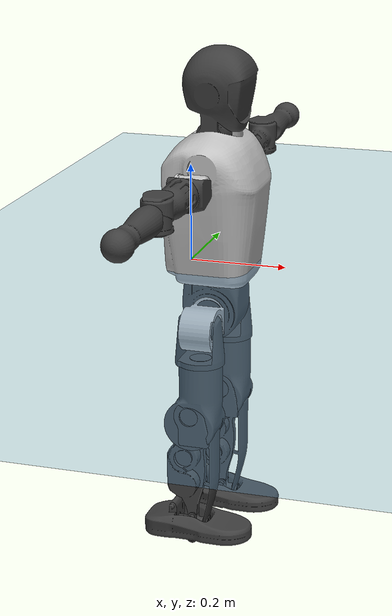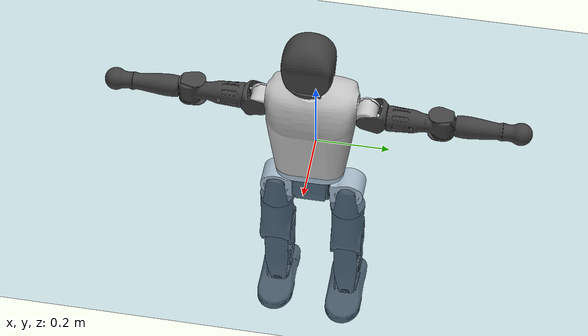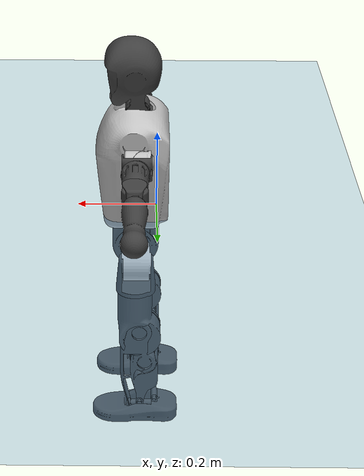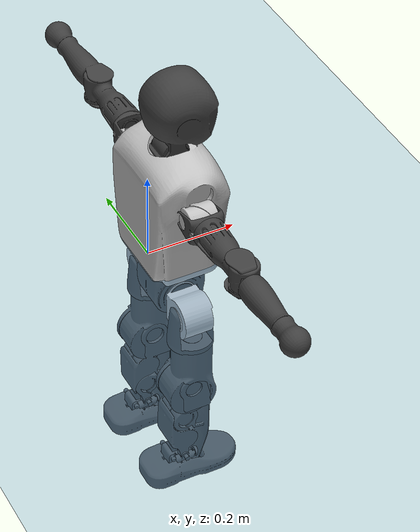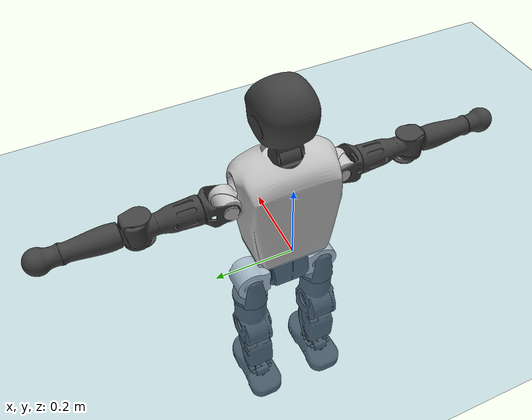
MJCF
<mujoco model="T1">
  <compiler angle="radian" assetdir="assets" balanceinertia="true" inertiafromgeom="false"/>

  <option timestep="0.005" density="1.2" viscosity="2e-05"/>

  <size nkey="1"/>

  <visual>
    <quality shadowsize="8192"/>
    <map shadowclip="0.5"/>
  </visual>

  <default>
    <default class="/">
      <joint armature="0.01" damping="0.01" frictionloss="0.1"/>
      <geom contype="0" conaffinity="0" group="1" solref="-1000 -80"/>
      <site size="0.01 0.005 0.005" group="5"/>
      <general forcelimited="true" biastype="affine" gainprm="25" biasprm="0 -25 -0.6"/>
      <default class="t1">
        <geom rgba="0.25 0.25 0.25 1"/>
        <default class="visual">
          <geom type="mesh" group="2"/>
        </default>
        <default class="collision">
          <geom group="3"/>
        </default>
        <default class="foot">
          <geom size="0.1115 0.05 0.015" type="box" condim="6" group="4" priority="1" solimp="0.015 1 0.015"/>
        </default>
        <default class="reward_collision_sphere">
          <geom group="5" rgba="1 0 0 1"/>
        </default>
      </default>
    </default>
  </default>

  <asset>
    <texture type="skybox" colorspace="auto" name="//unnamed_texture_0" builtin="gradient" rgb1="0.95 0.95 0.95" rgb2="0.95 0.95 0.95" width="100" height="600"/>
    <texture type="2d" colorspace="auto" name="texplane" builtin="checker" rgb1="0.345 0.575 0.748" rgb2="0.345 0.575 0.748" markrgb="1 1 1" width="512" height="512"/>
    <material name="MatPlane" class="/" texture="texplane" texuniform="true" texrepeat="2 2" specular="0.9"/>
    <mesh name="Trunk" class="/" file="Trunk.stl"/>
    <mesh name="H1" class="/" file="H1.stl"/>
    <mesh name="H2" class="/" file="H2.stl"/>
    <mesh name="AL1" class="/" file="AL1.stl"/>
    <mesh name="AL2" class="/" file="AL2.stl"/>
    <mesh name="AL3" class="/" file="AL3.stl"/>
    <mesh name="left_hand_link" class="/" file="left_hand_link.stl"/>
    <mesh name="AR1" class="/" file="AR1.stl"/>
    <mesh name="AR2" class="/" file="AR2.stl"/>
    <mesh name="AR3" class="/" file="AR3.stl"/>
    <mesh name="right_hand_link" class="/" file="right_hand_link.stl"/>
    <mesh name="Waist" class="/" file="Waist.stl"/>
    <mesh name="Hip_Pitch_Left" class="/" file="Hip_Pitch_Left.stl"/>
    <mesh name="Hip_Roll_Left" class="/" file="Hip_Roll_Left.stl"/>
    <mesh name="Hip_Yaw_Left" class="/" file="Hip_Yaw_Left.stl"/>
    <mesh name="Shank_Left" class="/" file="Shank_Left.stl"/>
    <mesh name="Ankle_Cross_Left" class="/" file="Ankle_Cross_Left.stl"/>
    <mesh name="left_foot_link" class="/" file="left_foot_link.stl"/>
    <mesh name="Hip_Pitch_Right" class="/" file="Hip_Pitch_Right.stl"/>
    <mesh name="Hip_Roll_Right" class="/" file="Hip_Roll_Right.stl"/>
    <mesh name="Hip_Yaw_Right" class="/" file="Hip_Yaw_Right.stl"/>
    <mesh name="Shank_Right" class="/" file="Shank_Right.stl"/>
    <mesh name="Ankle_Cross_Right" class="/" file="Ankle_Cross_Right.stl"/>
    <mesh name="right_foot_link" class="/" file="right_foot_link.stl"/>
  </asset>

  <worldbody>
    <geom name="floor" class="/" size="100 100 0.125" type="plane" group="0" material="MatPlane"/>
    <light name="toplight_shadow" class="/" pos="0 0 5" dir="0.0990148 0.0990148 -0.990148" type="directional" ambient="0.04 0.04 0.04" diffuse="0.55 0.55 0.55" specular="0.12 0.12 0.12"/>
    <light name="toplight_fill" class="/" pos="0 0 5" dir="0.0990148 0.0990148 -0.990148" type="directional" castshadow="false" ambient="0.04 0.04 0.04" diffuse="0.3 0.3 0.3" specular="0.08 0.08 0.08"/>
    <body name="trunk" childclass="t1" pos="0.000619805 -0.000138254 0.00279367" quat="1 0.000524918 4.48241e-05 9.55248e-05">
      <inertial pos="0.0453411 0.000867642 0.0877865" quat="0.99984 0.000947879 -0.0162679 -0.00737804" mass="7.20168" diaginertia="0.0362842 0.0462324 0.0222075"/>
      <joint name="//unnamed_joint_0" type="free" armature="0" damping="0" frictionloss="0"/>
      <geom name="//unnamed_geom_1" class="visual" rgba="0.76 0.76 0.76 1" mesh="Trunk"/>
      <geom name="//unnamed_geom_2" class="collision" size="0.0644516 0.0859354 0.128903" pos="0.0501755 0 0.100419" type="box"/>
      <geom name="//unnamed_geom_3" class="reward_collision_sphere" size="0.0988257" pos="0.0501755 0 0.0836824"/>
      <geom name="//unnamed_geom_4" class="reward_collision_sphere" size="0.0128903" pos="0.0501755 0.0769233 0"/>
      <geom name="//unnamed_geom_5" class="reward_collision_sphere" size="0.0128903" pos="0.0501755 -0.0769233 0"/>
      <geom name="//unnamed_geom_6" class="reward_collision_sphere" size="0.0128903" pos="0.0501755 0.0968329 0.150628"/>
      <geom name="//unnamed_geom_7" class="reward_collision_sphere" size="0.0128903" pos="0.0501755 -0.0968329 0.150628"/>
      <site name="imu" pos="0.00917713 -0.0127878 0.00767196" size="0.00859354"/>
      <camera name="track" pos="0 -1.80996 0" quat="0.707107 0.707107 0 0" mode="trackcom"/>
      <camera name="ego_camera" pos="0.102024 0 0.351466" quat="-0.5 -0.5 0.5 0.5"/>
      <body name="H1" pos="0.0495842 -0.00290985 0.20258" quat="0.999999 0.000431661 -0.000613645 0.000846037">
        <inertial pos="-0.00226105 -0.000967346 0.048613" quat="0.763599 -0.014605 7.91806e-05 0.645525" mass="0.279962" diaginertia="0.000102015 0.00013536 6.35219e-05"/>
        <joint name="AAHead_yaw" pos="0 0 0" axis="-0.00118013 1.90638e-07 0.999999" stiffness="0.0103598" range="-1.54278 1.61958" armature="0.00858886" damping="0.00951598" frictionloss="0.0850293"/>
        <geom name="//unnamed_geom_8" class="visual" mesh="H1"/>
        <body name="H2" pos="-0.000538679 -0.00244369 0.0524967" quat="1 -4.01109e-05 -1.07457e-05 9.90134e-06">
          <inertial pos="0.00779476 0.00318972 0.0850587" quat="0.988884 0.10264 -0.0722487 -0.0797127" mass="0.408058" diaginertia="0.000841129 0.0011531 0.000712646"/>
          <joint name="Head_pitch" pos="0 0 0" axis="0.000226717 -1 0.000293962" stiffness="0.00582492" range="-1.22959 0.402504" armature="0.00746158" damping="0" frictionloss="0.0850051"/>
          <geom name="//unnamed_geom_9" class="visual" mesh="H2"/>
          <geom name="//unnamed_geom_10" class="collision" size="0.0687483" pos="0.00836259 0 0.0920506"/>
          <geom name="//unnamed_geom_11" class="reward_collision_sphere" size="0.0773419" pos="0.0167252 0 0.0836824"/>
        </body>
      </body>
      <body name="AL1" pos="0.0475693 0.0966237 0.181414" quat="1 0.000356438 0.000810587 -0.000295968">
        <inertial pos="0.00111161 0.0425117 0.00225413" quat="0.511983 0.491276 -0.506675 0.489694" mass="0.339361" diaginertia="0.000567786 0.000790162 0.000123259"/>
        <joint name="Left_Shoulder_Pitch" pos="0 0 0" axis="0.000411768 1 0.000246628" range="-3.35875 1.16403" armature="0.00837084" damping="0.00031734" frictionloss="0.0862902"/>
        <geom name="//unnamed_geom_12" class="visual" rgba="0.76 0.76 0.76 1" mesh="AL1"/>
        <body name="AL2" pos="0.00193458 0.0457454 -0.000129643" quat="1 6.053e-05 -0.000992716 4.13288e-05">
          <inertial pos="0.0051753 0.0341187 -0.00292325" quat="0.485979 0.515633 -0.486595 0.51105" mass="0.106503" diaginertia="0.0001707 0.000223202 7.51487e-05"/>
          <joint name="Left_Shoulder_Roll" pos="0 0 0" axis="-0.999991 -0.00334959 0.00257042" range="-1.62767 1.74776" armature="0.00951875" damping="0" frictionloss="0.0812216"/>
          <geom name="//unnamed_geom_13" class="visual" mesh="AL2"/>
          <body name="AL3" pos="0.00422438 0.0577652 -0.00024298" quat="1 -0.000681271 -0.000124578 4.46425e-05">
            <inertial pos="-0.00166297 0.0762209 4.58547e-05" quat="0.71371 0.700385 0.00608554 -0.0065401" mass="0.6662" diaginertia="0.0054741 0.00793971 0.000255453"/>
            <joint name="Left_Elbow_Pitch" pos="0 0 0" axis="0.000209632 -1 -5.01282e-05" stiffness="0.00551806" range="-2.31154 2.27523" armature="0.00849984" damping="0.00891632" frictionloss="0.0872583"/>
            <geom name="//unnamed_geom_14" class="visual" mesh="AL3"/>
            <geom name="//unnamed_geom_15" class="collision" size="0.0257806 0.0644516" pos="0 0.045249 0" quat="0.707105 0.707108 0 0" type="cylinder"/>
            <geom name="//unnamed_geom_16" class="reward_collision_sphere" size="0.0309368"/>
            <body name="left_hand_link" pos="0.000913372 0.13533 0.00377138" quat="0.999999 0.000663682 0.000810678 0.000515635">
              <inertial pos="0.000352525 0.0975666 -0.00191041" quat="0.707305 0.706795 0.0105339 -0.00700397" mass="0.203895" diaginertia="0.00336136 0.00483274 8.42543e-05"/>
              <joint name="Left_Elbow_Yaw" pos="0 0 0" axis="0.00209346 -0.0152521 0.999881" stiffness="7.33143e-05" range="-2.45086 0.0514141" armature="0.00865898" damping="0.000183062" frictionloss="0.0938242"/>
              <geom name="//unnamed_geom_17" class="visual" mesh="left_hand_link"/>
              <geom name="//unnamed_geom_18" class="collision" size="0.0257806 0.0751935" pos="0 0.117647 0" quat="0.707105 0.707108 0 0" type="cylinder"/>
              <geom name="//unnamed_geom_19" class="reward_collision_sphere" size="0.0429677"/>
              <geom name="//unnamed_geom_20" class="reward_collision_sphere" size="0.0300774" pos="0 0.0995478 0"/>
              <geom name="//unnamed_geom_21" class="reward_collision_sphere" size="0.0300774" pos="0 0.194571 0"/>
            </body>
          </body>
        </body>
      </body>
      <body name="AR1" pos="0.045357 -0.0925346 0.182482" quat="1 0.000161022 0.000725381 6.52123e-05">
        <inertial pos="-0.00180486 -0.0406809 -0.00125123" quat="0.502897 0.493249 -0.505006 0.498767" mass="0.349473" diaginertia="0.000563412 0.00079654 0.000122011"/>
        <joint name="Right_Shoulder_Pitch" pos="0 0 0" axis="0.0090201 -0.999933 -0.00727045" stiffness="0.0122078" range="-1.18328 3.32856" armature="0.00870956" damping="0.0207248" frictionloss="0.0856316"/>
        <geom name="//unnamed_geom_22" class="visual" rgba="0.76 0.76 0.76 1" mesh="AR1"/>
        <body name="AR2" pos="-0.00237091 -0.0391168 6.20008e-05" quat="0.999999 0.00065337 -0.000824029 0.00058281">
          <inertial pos="0.000428664 -0.032865 -0.00257652" quat="0.517317 0.481247 -0.5181 0.482034" mass="0.102017" diaginertia="0.00016162 0.000208607 7.35239e-05"/>
          <joint name="Right_Shoulder_Roll" pos="0 0 0" axis="-0.999954 -0.00401643 -0.008708" stiffness="0.011483" range="-1.69569 1.52551" armature="0.00865177" damping="0.00958311" frictionloss="0.0755155"/>
          <geom name="//unnamed_geom_23" class="visual" mesh="AR2"/>
          <body name="AR3" pos="-0.00231173 -0.0529151 0.00241426" quat="1 4.39629e-05 -0.000541884 5.98828e-05">
            <inertial pos="-0.000490816 -0.0773432 0.000884742" quat="0.709483 0.704684 -0.00295797 0.00675499" mass="0.631118" diaginertia="0.00512857 0.00805207 0.000255872"/>
            <joint name="Right_Elbow_Pitch" pos="0 0 0" axis="-6.3366e-05 0.999995 0.00323302" stiffness="0.00875342" range="-2.2737 2.26015" armature="0.00894469" damping="0.0184033" frictionloss="0.0953223"/>
            <geom name="//unnamed_geom_24" class="visual" mesh="AR3"/>
            <geom name="//unnamed_geom_25" class="collision" size="0.0257806 0.0644516" pos="0 -0.045249 0" quat="0.707105 0.707108 0 0" type="cylinder"/>
            <geom name="//unnamed_geom_26" class="reward_collision_sphere" size="0.0309368"/>
            <body name="right_hand_link" pos="-0.00263347 -0.131453 0.000107684" quat="0.999999 -0.000748944 0.000970886 -0.000353831">
              <inertial pos="-0.000477574 -0.0987433 0.00295945" quat="0.706731 0.707378 -0.0121455 -0.000227726" mass="0.200404" diaginertia="0.00314321 0.00482761 8.62895e-05"/>
              <joint name="Right_Elbow_Yaw" pos="0 0 0" axis="0.0012539 0.00320661 0.999994" stiffness="0.00289779" range="-0.056014 2.43041" armature="0.00950981" damping="0.00999913" frictionloss="0.0858229"/>
              <geom name="//unnamed_geom_27" class="visual" mesh="right_hand_link"/>
              <geom name="//unnamed_geom_28" class="collision" size="0.0257806 0.0751935" pos="0 -0.117647 0" quat="0.707105 0.707108 0 0" type="cylinder"/>
              <geom name="//unnamed_geom_29" class="reward_collision_sphere" size="0.0429677"/>
              <geom name="//unnamed_geom_30" class="reward_collision_sphere" size="0.0300774" pos="0 -0.0995478 0"/>
              <geom name="//unnamed_geom_31" class="reward_collision_sphere" size="0.0300774" pos="0 -0.194571 0"/>
            </body>
          </body>
        </body>
      </body>
      <body name="Waist" pos="0.0528739 0.000612379 -0.0992857" quat="1 2.32924e-05 6.18489e-05 4.62542e-05">
        <inertial pos="0.00366684 -0.000427493 0.00637663" quat="0.983439 -0.001516 -0.181133 -0.00606781" mass="1.63478" diaginertia="0.00211442 0.00301752 0.0018589"/>
        <joint name="Waist" pos="0 0 0" axis="0.000734214 -0.00125696 0.999999" stiffness="0.0025922" range="-1.5346 1.60169" armature="0.00756349" damping="0.015154" frictionloss="0.0905496"/>
        <geom name="//unnamed_geom_32" class="visual" mesh="Waist"/>
        <body name="Hip_Pitch_Left" pos="-0.00131714 0.097966 -0.000921211" quat="1 0.000121269 -0.000432972 -0.000854385">
          <inertial pos="-0.00120679 -0.00480638 -0.0154432" quat="0.974937 0.221888 0.0156862 0.00410822" mass="0.63016" diaginertia="0.000716206 0.00087291 0.000500422"/>
          <joint name="Left_Hip_Pitch" pos="0 0 0" axis="-0.0038161 0.999993 -0.000178602" stiffness="0.0112755" range="-1.81344 1.62719" armature="0.00856105" damping="0.0208283" frictionloss="0.0861565"/>
          <geom name="//unnamed_geom_33" class="visual" rgba="0.76 0.76 0.76 1" mesh="Hip_Pitch_Left"/>
          <body name="Hip_Roll_Left" pos="0.00218742 -0.00104811 -0.01981" quat="0.999999 -2.04023e-05 -0.000942662 0.000495654">
            <inertial pos="-0.000457765 -0.000365728 -0.0455621" quat="0.70743 -0.00543065 -0.00553859 0.706741" mass="0.243318" diaginertia="0.00071948 0.000891684 0.000204215"/>
            <joint name="Left_Hip_Roll" pos="0 0 0" axis="-0.999998 0.00195122 -0.000455641" range="-1.56271 0.192808" armature="0.008474" damping="0.0160417" frictionloss="0.0979374"/>
            <geom name="//unnamed_geom_34" class="visual" mesh="Hip_Roll_Left"/>
            <geom name="//unnamed_geom_35" class="reward_collision_sphere" size="0.0472645"/>
            <body name="Hip_Yaw_Left" pos="-3.74989e-05 0.000694064 -0.0704564" quat="0.999999 -0.000822045 0.000564778 0.000768647">
              <inertial pos="-0.00625713 -0.000401566 -0.0742139" quat="0.695061 -0.0431569 -0.0321364 0.716934" mass="1.34107" diaginertia="0.0104107 0.0150437 0.00109594"/>
              <joint name="Left_Hip_Yaw" pos="0 0 0" axis="-0.0110515 0.00199896 -0.999937" range="-1.00574 0.982764" armature="0.00841528" damping="0.00512431" frictionloss="0.0854618"/>
              <geom name="//unnamed_geom_36" class="visual" mesh="Hip_Yaw_Left"/>
              <geom name="//unnamed_geom_37" class="collision" size="0.0429677 0.0687483" type="cylinder"/>
              <body name="Shank_Left" pos="-0.0122125 -0.000904367 -0.114724" quat="0.999999 -0.000696183 0.000794249 0.000219234">
                <inertial pos="-0.00483225 0.00146418 -0.105216" quat="0.996553 0.00511093 -0.0254666 0.0787909" mass="1.12884" diaginertia="0.0139125 0.0219141 0.000775016"/>
                <joint name="Left_Knee_Pitch" pos="0 0 0" axis="0.00362209 0.999993 -0.000252764" stiffness="0.00447698" range="0.0236451 2.35184" armature="0.00884118" damping="0.016037" frictionloss="0.0974359"/>
                <geom name="//unnamed_geom_38" class="visual" mesh="Shank_Left"/>
                <geom name="//unnamed_geom_39" class="collision" size="0.0429677 0.0644516" pos="0 0 -0.100419" type="cylinder"/>
                <geom name="//unnamed_geom_40" class="reward_collision_sphere" size="0.055858"/>
                <body name="Ankle_Cross_Left" pos="-0.00172134 -0.0014253 -0.235443" quat="0.999999 0.00122126 9.32787e-05 0.000215555">
                  <inertial pos="-0.00200941 0.00220467 -0.00848538" quat="0.446187 0.549005 0.548035 0.446283" mass="0.0472433" diaginertia="1.2626e-05 1.55023e-05 4.6465e-06"/>
                  <joint name="Left_Ankle_Pitch" pos="0 0 0" axis="0.0038161 0.999919 -0.0121429" range="-0.9005 0.400141" armature="0.00754449" damping="0.0177863" frictionloss="0.0970393"/>
                  <geom name="//unnamed_geom_41" class="visual" mesh="Ankle_Cross_Left"/>
                  <body name="left_foot_link" pos="0.00221107 -0.000699172 -0.0130014" quat="1 0.000383906 -0.000147707 -0.00036915">
                    <inertial pos="-0.00104708 -0.00230913 -0.0078764" quat="-3.75286e-05 0.620748 0.000816915 0.78401" mass="0.424468" diaginertia="0.0011447 0.00144916 0.000907768"/>
                    <joint name="Left_Ankle_Roll" pos="0 0 0" axis="-0.999969 -0.0076209 0.00187498" range="-0.493469 0.410942" armature="0.0084808" damping="0.00392141" frictionloss="0.0813937"/>
                    <geom name="//unnamed_geom_42" class="visual" mesh="left_foot_link"/>
                    <geom name="left_foot" class="foot" size="0.0976709 0.0406596 0.0143346" pos="0.00836259 0 -0.0125524"/>
                    <geom name="//unnamed_geom_44" class="reward_collision_sphere" size="0.0446864" pos="0.00836259 0 -0.0125524"/>
                    <geom name="//unnamed_geom_45" class="reward_collision_sphere" size="0.0257806" pos="0.0794446 -0.0208145 -0.0125524"/>
                    <geom name="//unnamed_geom_46" class="reward_collision_sphere" size="0.0257806" pos="-0.0585381 -0.0208145 -0.0125524"/>
                    <site name="left_foot" class="foot" pos="0.00836259 0 -0.0125524" size="0.00859354"/>
                  </body>
                </body>
              </body>
            </body>
          </body>
        </body>
        <body name="Hip_Pitch_Right" pos="-0.00220627 -0.0974184 0.00141167" quat="0.999999 -0.000132399 -0.000397306 -0.00137467">
          <inertial pos="0.000269263 0.00760314 -0.0126879" quat="0.974016 -0.226416 0.00167694 -0.00513428" mass="0.649371" diaginertia="0.000742456 0.000894717 0.000532704"/>
          <joint name="Right_Hip_Pitch" pos="0 0 0" axis="-0.0130047 -0.999906 0.00427446" range="-1.57988 1.80467" armature="0.00966124" damping="0.00804158" frictionloss="0.0964777"/>
          <geom name="//unnamed_geom_47" class="visual" rgba="0.76 0.76 0.76 1" mesh="Hip_Pitch_Right"/>
          <body name="Hip_Roll_Right" pos="0.000482615 -0.00183495 -0.0138895" quat="1 -0.000264484 -0.000403538 0.000692743">
            <inertial pos="0.00311335 0.000474748 -0.0475671" quat="0.697961 -0.00326388 -0.010766 0.716047" mass="0.235309" diaginertia="0.000663719 0.000889812 0.000203064"/>
            <joint name="Right_Hip_Roll" pos="0 0 0" axis="-0.999998 0.00189333 -0.00106594" stiffness="0.00745036" range="-0.189601 1.62919" armature="0.00808533" damping="0.00730968" frictionloss="0.0853564"/>
            <geom name="//unnamed_geom_48" class="visual" mesh="Hip_Roll_Right"/>
            <geom name="//unnamed_geom_49" class="reward_collision_sphere" size="0.0472645"/>
            <body name="Hip_Yaw_Right" pos="-0.000257153 -0.00262761 -0.0682735" quat="0.999999 -0.00124257 0.000370675 -0.000260301">
              <inertial pos="-0.002732 0.000304969 -0.0740725" quat="0.710827 -0.0350965 -0.0215281 0.702161" mass="1.44373" diaginertia="0.0111995 0.0161787 0.00112794"/>
              <joint name="Right_Hip_Yaw" pos="0 0 0" axis="-0.00522703 -0.0106837 -0.999929" stiffness="0.000594604" range="-1.01171 0.972552" armature="0.00871082" damping="0.00324497" frictionloss="0.0755584"/>
              <geom name="//unnamed_geom_50" class="visual" mesh="Hip_Yaw_Right"/>
              <geom name="//unnamed_geom_51" class="collision" size="0.0429677 0.0687483" type="cylinder"/>
              <body name="Shank_Right" pos="-0.0140632 0.00246145 -0.113635" quat="0.999999 0.000477993 0.000597949 -0.000885554">
                <inertial pos="-0.00235992 0.00207704 -0.101924" quat="0.999268 -0.000265873 -0.0232946 -0.030347" mass="1.1747" diaginertia="0.0143484 0.0207587 0.000786994"/>
                <joint name="Right_Knee_Pitch" pos="0 0 0" axis="-0.00392401 -0.999984 0.00395913" stiffness="0.00949047" range="-2.34691 -0.0222884" armature="0.00811904" damping="0.0211947" frictionloss="0.0936754"/>
                <geom name="//unnamed_geom_52" class="visual" mesh="Shank_Right"/>
                <geom name="//unnamed_geom_53" class="collision" size="0.0429677 0.0644516" pos="0 0 -0.100419" type="cylinder"/>
                <geom name="//unnamed_geom_54" class="reward_collision_sphere" size="0.055858"/>
                <body name="Ankle_Cross_Right" pos="-0.00228476 -0.001715 -0.236639" quat="0.999999 0.000573064 0.00119687 7.36028e-05">
                  <inertial pos="-0.00328059 0.000875939 -0.0072171" quat="0.444851 0.557093 0.546785 0.439069" mass="0.0432811" diaginertia="1.14229e-05 1.49734e-05 4.54854e-06"/>
                  <joint name="Right_Ankle_Pitch" pos="0 0 0" axis="-0.00515508 -0.999962 0.00699497" stiffness="0.00043926" range="-0.357911 0.81417" armature="0.00979321" damping="0" frictionloss="0.0783864"/>
                  <geom name="//unnamed_geom_55" class="visual" mesh="Ankle_Cross_Right"/>
                  <body name="right_foot_link" pos="0.00224171 -0.0004915 -0.00724624" quat="0.999999 0.000528408 -0.00106316 0.000209919">
                    <inertial pos="9.1981e-05 0.000918179 -0.0102345" quat="0.00181422 0.619712 0.00398231 0.784817" mass="0.457919" diaginertia="0.00108536 0.00145566 0.00089196"/>
                    <joint name="Right_Ankle_Roll" pos="0 0 0" axis="-0.999894 0.00578843 0.0133517" range="-0.404477 0.481587" armature="0.00726452" damping="0.00468721" frictionloss="0.0814598"/>
                    <geom name="//unnamed_geom_56" class="visual" mesh="right_foot_link"/>
                    <geom name="right_foot" class="foot" size="0.0975994 0.0439083 0.0133081" pos="0.00836259 0 -0.0125524"/>
                    <geom name="//unnamed_geom_58" class="reward_collision_sphere" size="0.0343742"/>
                    <geom name="//unnamed_geom_59" class="reward_collision_sphere" size="0.0257806" pos="0.00836259 0 -0.0125524"/>
                    <geom name="//unnamed_geom_60" class="reward_collision_sphere" size="0.0257806" pos="0.0794446 0.0208145 -0.0125524"/>
                    <geom name="//unnamed_geom_61" class="reward_collision_sphere" size="0.0257806" pos="-0.0585381 0.0208145 -0.0125524"/>
                    <site name="right_foot" class="foot" pos="0.00836259 0 -0.0125524" size="0.00859354"/>
                  </body>
                </body>
              </body>
            </body>
          </body>
        </body>
      </body>
    </body>
  </worldbody>

  <contact>
    <pair class="/" geom1="floor" geom2="left_foot" name="//unnamed_contact_0"/>
    <pair class="/" geom1="floor" geom2="right_foot" name="//unnamed_contact_1"/>
  </contact>

  <actuator>
    <general name="AAHead_yaw" class="/" joint="AAHead_yaw" forcerange="-5.55528 5.55528" gainprm="23.3415" biasprm="0 -23.3415 -0.531572"/>
    <general name="Head_pitch" class="/" joint="Head_pitch" forcerange="-5.78401 5.78401" gainprm="23.3415" biasprm="0 -23.3415 -0.531572"/>
    <general name="Left_Shoulder_Pitch" class="/" joint="Left_Shoulder_Pitch" forcerange="-15.2074 15.2074" gainprm="23.3415" biasprm="0 -23.3415 -0.531572"/>
    <general name="Left_Shoulder_Roll" class="/" joint="Left_Shoulder_Roll" forcerange="-15.2011 15.2011" gainprm="23.3415" biasprm="0 -23.3415 -0.531572"/>
    <general name="Left_Elbow_Pitch" class="/" joint="Left_Elbow_Pitch" forcerange="-17.1053 17.1053" gainprm="23.3415" biasprm="0 -23.3415 -0.531572"/>
    <general name="Left_Elbow_Yaw" class="/" joint="Left_Elbow_Yaw" forcerange="-15.9866 15.9866" gainprm="23.3415" biasprm="0 -23.3415 -0.531572"/>
    <general name="Right_Shoulder_Pitch" class="/" joint="Right_Shoulder_Pitch" forcerange="-15.1882 15.1882" gainprm="23.3415" biasprm="0 -23.3415 -0.531572"/>
    <general name="Right_Shoulder_Roll" class="/" joint="Right_Shoulder_Roll" forcerange="-15.665 15.665" gainprm="23.3415" biasprm="0 -23.3415 -0.531572"/>
    <general name="Right_Elbow_Pitch" class="/" joint="Right_Elbow_Pitch" forcerange="-15.2502 15.2502" gainprm="23.3415" biasprm="0 -23.3415 -0.531572"/>
    <general name="Right_Elbow_Yaw" class="/" joint="Right_Elbow_Yaw" forcerange="-16.9406 16.9406" gainprm="23.3415" biasprm="0 -23.3415 -0.531572"/>
    <general name="Waist" class="/" joint="Waist" forcerange="-27.8387 27.8387" gainprm="23.3415" biasprm="0 -23.3415 -0.531572"/>
    <general name="Left_Hip_Pitch" class="/" joint="Left_Hip_Pitch" forcerange="-36.0728 36.0728" gainprm="23.3415" biasprm="0 -23.3415 -0.531572"/>
    <general name="Left_Hip_Roll" class="/" joint="Left_Hip_Roll" forcerange="-25.3699 25.3699" gainprm="23.3415" biasprm="0 -23.3415 -0.531572"/>
    <general name="Left_Hip_Yaw" class="/" joint="Left_Hip_Yaw" forcerange="-26.641 26.641" gainprm="23.3415" biasprm="0 -23.3415 -0.531572"/>
    <general name="Left_Knee_Pitch" class="/" joint="Left_Knee_Pitch" forcerange="-56.2124 56.2124" gainprm="23.3415" biasprm="0 -23.3415 -0.531572"/>
    <general name="Left_Ankle_Pitch" class="/" joint="Left_Ankle_Pitch" forcerange="-16.6889 16.6889" gainprm="23.3415" biasprm="0 -23.3415 -0.531572"/>
    <general name="Left_Ankle_Roll" class="/" joint="Left_Ankle_Roll" forcerange="-12.8082 12.8082" gainprm="23.3415" biasprm="0 -23.3415 -0.531572"/>
    <general name="Right_Hip_Pitch" class="/" joint="Right_Hip_Pitch" forcerange="-41.9029 41.9029" gainprm="23.3415" biasprm="0 -23.3415 -0.531572"/>
    <general name="Right_Hip_Roll" class="/" joint="Right_Hip_Roll" forcerange="-25.5137 25.5137" gainprm="23.3415" biasprm="0 -23.3415 -0.531572"/>
    <general name="Right_Hip_Yaw" class="/" joint="Right_Hip_Yaw" forcerange="-26.5749 26.5749" gainprm="23.3415" biasprm="0 -23.3415 -0.531572"/>
    <general name="Right_Knee_Pitch" class="/" joint="Right_Knee_Pitch" forcerange="-56.8669 56.8669" gainprm="23.3415" biasprm="0 -23.3415 -0.531572"/>
    <general name="Right_Ankle_Pitch" class="/" joint="Right_Ankle_Pitch" forcerange="-15.9996 15.9996" gainprm="23.3415" biasprm="0 -23.3415 -0.531572"/>
    <general name="Right_Ankle_Roll" class="/" joint="Right_Ankle_Roll" forcerange="-11.8464 11.8464" gainprm="23.3415" biasprm="0 -23.3415 -0.531572"/>
  </actuator>

  <sensor>
    <gyro site="imu" name="imu_angular_velocity"/>
    <velocimeter site="imu" name="imu_linear_velocity"/>
    <framelinvel objtype="site" objname="left_foot" name="left_foot_global_linear_velocity"/>
    <framelinvel objtype="site" objname="right_foot" name="right_foot_global_linear_velocity"/>
  </sensor>

  <keyframe>
    <key name="home" qpos="0 0 0.6385 1 0 0 0 0 0 0 1.4 0 -0.4 0 -1.4 0 0.4 0 -0.4 0 0 0.8 -0.4 0 0.4 0 0 -0.8 0.4 0"/>
  </keyframe>
</mujoco>
